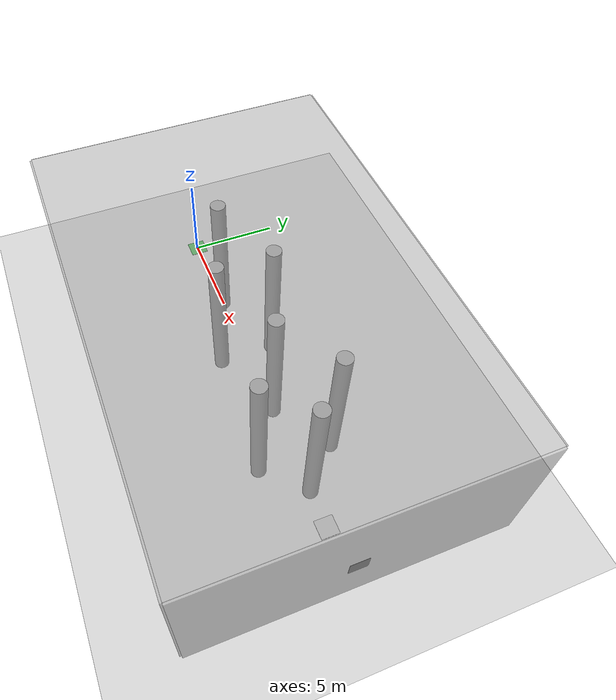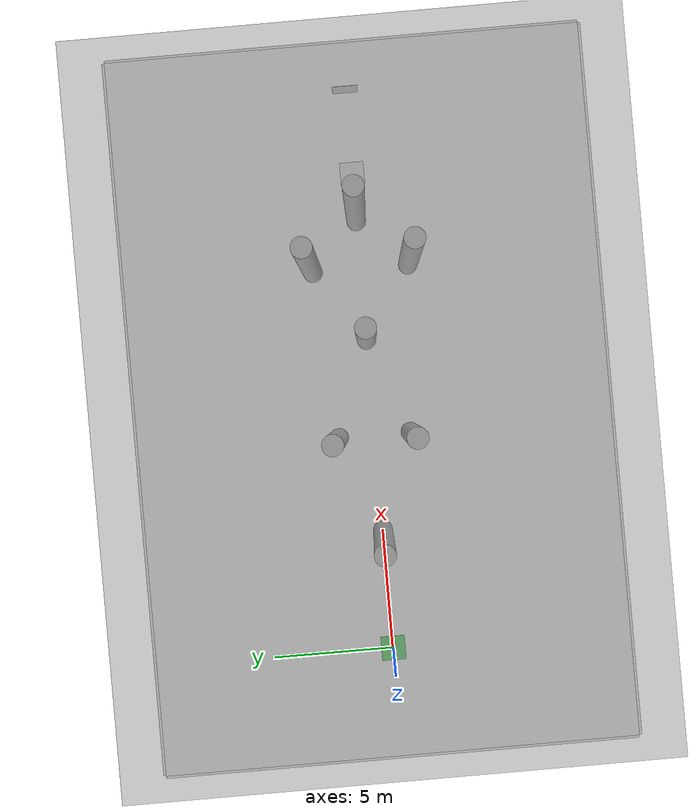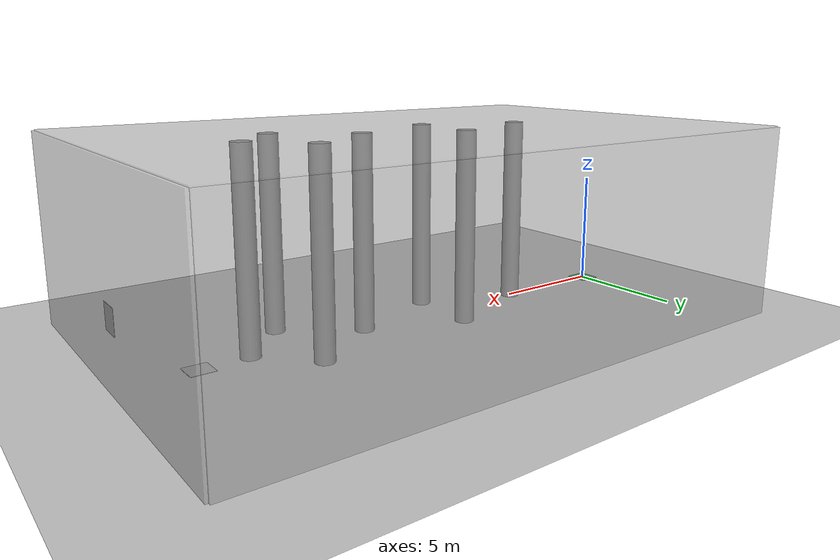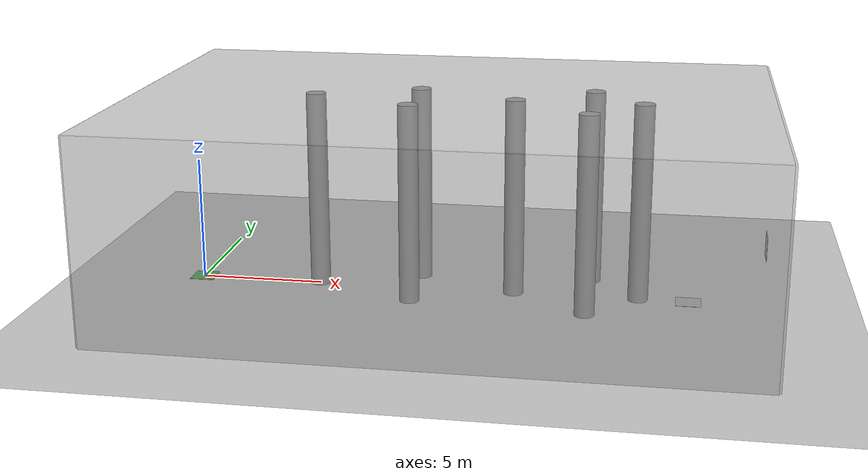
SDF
<?xml version="1.0" ?>
<sdf version="1.5">
  <world name="uav_dual_tag_arena">
    <include><uri>model://sun</uri></include>
    <include><uri>model://ground_plane</uri></include>

    <model name="wall_north">
      <static>true</static>
      <pose>10.5 8.3 4.0 0 0 0</pose>
      <link name="link">
        <collision name="collision"><geometry><box><size>25 0.2 8</size></box></geometry></collision>
        <visual name="visual">
          <geometry><box><size>25 0.2 8</size></box></geometry>
          <material><script><uri>file://media/materials/scripts/gazebo.material</uri><name>Gazebo/GreyTransparent</name></script></material>
        </visual>
      </link>
    </model>

    <model name="wall_south">
      <static>true</static>
      <pose>10.5 -8.3 4.0 0 0 0</pose>
      <link name="link">
        <collision name="collision"><geometry><box><size>25 0.2 8</size></box></geometry></collision>
        <visual name="visual">
          <geometry><box><size>25 0.2 8</size></box></geometry>
          <material><script><uri>file://media/materials/scripts/gazebo.material</uri><name>Gazebo/GreyTransparent</name></script></material>
        </visual>
      </link>
    </model>

    <model name="wall_east">
      <static>true</static>
      <pose>23 0 4.0 0 0 0</pose>
      <link name="link">
        <collision name="collision"><geometry><box><size>0.2 16.6 8</size></box></geometry></collision>
        <visual name="visual">
          <geometry><box><size>0.2 16.6 8</size></box></geometry>
          <material><script><uri>file://media/materials/scripts/gazebo.material</uri><name>Gazebo/GreyTransparent</name></script></material>
        </visual>
      </link>
    </model>

    <model name="wall_west">
      <static>true</static>
      <pose>-2 0 4.0 0 0 0</pose>
      <link name="link">
        <collision name="collision"><geometry><box><size>0.2 16.6 8</size></box></geometry></collision>
        <visual name="visual">
          <geometry><box><size>0.2 16.6 8</size></box></geometry>
          <material><script><uri>file://media/materials/scripts/gazebo.material</uri><name>Gazebo/GreyTransparent</name></script></material>
        </visual>
      </link>
    </model>

    <model name="ceiling_limit">
      <static>true</static>
      <pose>10.5 0 8.0 0 0 0</pose>
      <link name="link">
        <collision name="collision"><geometry><box><size>25 16.6 0.1</size></box></geometry></collision>
        <visual name="visual">
          <geometry><box><size>25 16.6 0.1</size></box></geometry>
          <material><script><uri>file://media/materials/scripts/gazebo.material</uri><name>Gazebo/GreyTransparent</name></script></material>
        </visual>
      </link>
    </model>

    <model name="pillar_1"><static>true</static><pose>5 0 4.0 0 0 0</pose><link name="link">
      <collision name="collision"><geometry><cylinder><radius>0.4</radius><length>8.0</length></cylinder></geometry></collision>
      <visual name="visual"><geometry><cylinder><radius>0.4</radius><length>8.0</length></cylinder></geometry><material><script><name>Gazebo/Grey</name></script></material></visual>
    </link></model>

    <model name="pillar_2"><static>true</static><pose>9 1.5 4.0 0 0 0</pose><link name="link">
      <collision name="collision"><geometry><cylinder><radius>0.4</radius><length>8.0</length></cylinder></geometry></collision>
      <visual name="visual"><geometry><cylinder><radius>0.4</radius><length>8.0</length></cylinder></geometry><material><script><name>Gazebo/Grey</name></script></material></visual>
    </link></model>

    <model name="pillar_3"><static>true</static><pose>9 -1.5 4.0 0 0 0</pose><link name="link">
      <collision name="collision"><geometry><cylinder><radius>0.4</radius><length>8.0</length></cylinder></geometry></collision>
      <visual name="visual"><geometry><cylinder><radius>0.4</radius><length>8.0</length></cylinder></geometry><material><script><name>Gazebo/Grey</name></script></material></visual>
    </link></model>

    <model name="pillar_4"><static>true</static><pose>13 0 4.0 0 0 0</pose><link name="link">
      <collision name="collision"><geometry><cylinder><radius>0.4</radius><length>8.0</length></cylinder></geometry></collision>
      <visual name="visual"><geometry><cylinder><radius>0.4</radius><length>8.0</length></cylinder></geometry><material><script><name>Gazebo/Grey</name></script></material></visual>
    </link></model>

    <model name="pillar_5"><static>true</static><pose>16 2.0 4.0 0 0 0</pose><link name="link">
      <collision name="collision"><geometry><cylinder><radius>0.4</radius><length>8.0</length></cylinder></geometry></collision>
      <visual name="visual"><geometry><cylinder><radius>0.4</radius><length>8.0</length></cylinder></geometry><material><script><name>Gazebo/Grey</name></script></material></visual>
    </link></model>

    <model name="pillar_6"><static>true</static><pose>16 -2.0 4.0 0 0 0</pose><link name="link">
      <collision name="collision"><geometry><cylinder><radius>0.4</radius><length>8.0</length></cylinder></geometry></collision>
      <visual name="visual"><geometry><cylinder><radius>0.4</radius><length>8.0</length></cylinder></geometry><material><script><name>Gazebo/Grey</name></script></material></visual>
    </link></model>

    <model name="pillar_7"><static>true</static><pose>18 0 4.0 0 0 0</pose><link name="link">
      <collision name="collision"><geometry><cylinder><radius>0.4</radius><length>8.0</length></cylinder></geometry></collision>
      <visual name="visual"><geometry><cylinder><radius>0.4</radius><length>8.0</length></cylinder></geometry><material><script><name>Gazebo/Grey</name></script></material></visual>
    </link></model>

    <model name="start_pad">
      <static>true</static>
      <pose>0 0 0.01 0 0 0</pose>
      <link name="link">
        <visual name="visual">
          <geometry><box><size>1.0 1.0 0.01</size></box></geometry>
          <material><script><name>Gazebo/Green</name></script></material>
        </visual>
      </link>
    </model>

    <include>
      <uri>model://apriltag_pad</uri>
      <name>apriltag_ground</name>
      <pose>20.0 0.0 0.01 0 0 0</pose>
    </include>

    <include>
      <uri>model://apriltag_wall_pad</uri>
      <name>apriltag_wall</name>
      <pose>22.89 0.0 2.5 0 -1.5708 0</pose>
    </include>

  </world>
</sdf>

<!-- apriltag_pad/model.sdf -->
<sdf version="1.5">
  <model name="apriltag_pad">
    <static>true</static>
    <link name="link">
      <visual name="visual">
        <geometry>
          <box><size>1.0 1.0 0.01</size></box>
        </geometry>
        <material>
          <script>
            <uri>model://apriltag_pad/materials/scripts</uri>
            <uri>model://apriltag_pad/materials/textures</uri>
            <name>AprilTag/Tag0</name>
          </script>
        </material>
      </visual>
      <collision name="collision">
        <geometry>
          <box><size>1.0 1.0 0.01</size></box>
        </geometry>
      </collision>
    </link>
  </model>
</sdf>

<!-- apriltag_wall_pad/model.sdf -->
<sdf version="1.5">
  <model name="apriltag_wall_pad">
    <static>true</static>
    <link name="link">
      <visual name="visual">
        <geometry>
          <box><size>1.0 1.0 0.01</size></box>
        </geometry>
        <material>
          <script>
            <uri>model://apriltag_wall_pad/materials/scripts</uri>
            <uri>model://apriltag_wall_pad/materials/textures</uri>
            <name>AprilTag/Tag1</name>  </script>
        </material>
      </visual>
      <collision name="collision">
        <geometry>
          <box><size>1.0 1.0 0.01</size></box>
        </geometry>
      </collision>
    </link>
  </model>
</sdf>
